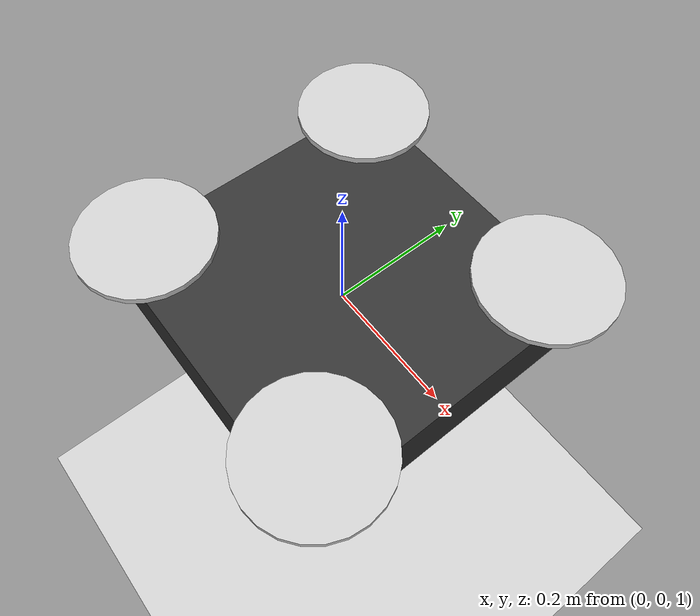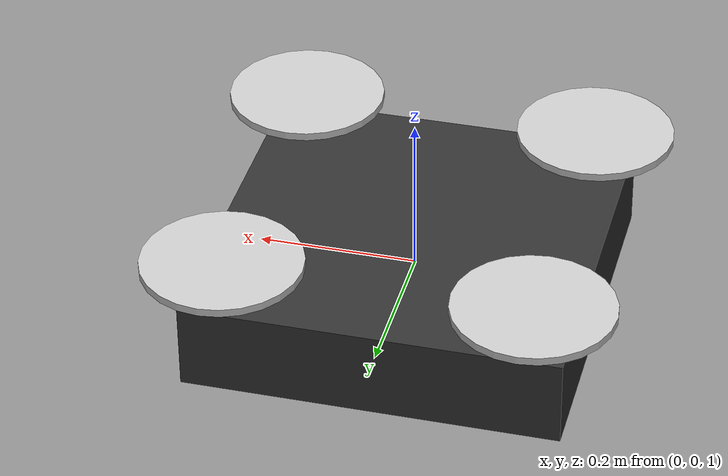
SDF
<?xml version="1.0" ?>
<sdf version="1.6">
  <world name="drone_world">

    <physics name="default_physics" default="0" type="ode">
      <max_step_size>0.004</max_step_size>
      <real_time_factor>1.0</real_time_factor>
      <real_time_update_rate>250</real_time_update_rate>
    </physics>

    <plugin filename="ignition-gazebo-physics-system" name="ignition::gazebo::systems::Physics"></plugin>
    <plugin filename="ignition-gazebo-user-commands-system" name="ignition::gazebo::systems::UserCommands"></plugin>
    <plugin filename="ignition-gazebo-scene-broadcaster-system" name="ignition::gazebo::systems::SceneBroadcaster"></plugin>

    <!-- Sun -->
    <include>
      <uri>https://fuel.ignitionrobotics.org/1.0/OpenRobotics/models/Sun</uri>
    </include>

    <!-- Ground plane -->
    <include>
      <uri>https://fuel.ignitionrobotics.org/1.0/OpenRobotics/models/Ground Plane</uri>
    </include>

    <!-- Drone model with force-based control -->
    <model name="quadrotor">
      <pose>0 0 1.0 0 0 0</pose>
      <link name="base_link">
        <inertial>
          <mass>1.5</mass>
          <inertia>
            <ixx>0.029125</ixx>
            <ixy>0</ixy>
            <ixz>0</ixz>
            <iyy>0.029125</iyy>
            <iyz>0</iyz>
            <izz>0.055225</izz>
          </inertia>
        </inertial>

        <visual name="body">
          <geometry>
            <box>
              <size>0.47 0.47 0.11</size>
            </box>
          </geometry>
          <material>
            <ambient>0.2 0.2 0.2 1</ambient>
            <diffuse>0.2 0.2 0.2 1</diffuse>
          </material>
        </visual>

        <collision name="body_collision">
          <geometry>
            <box>
              <size>0.47 0.47 0.11</size>
            </box>
          </geometry>
        </collision>

        <!-- Rotor visuals -->
        <visual name="rotor_0">
          <pose>0.19 0.19 0.1 0 0 0</pose>
          <geometry>
            <cylinder>
              <radius>0.1</radius>
              <length>0.01</length>
            </cylinder>
          </geometry>
          <material>
            <ambient>0.8 0.8 0.8 1</ambient>
            <diffuse>0.8 0.8 0.8 1</diffuse>
          </material>
        </visual>

        <visual name="rotor_1">
          <pose>-0.19 0.19 0.1 0 0 0</pose>
          <geometry>
            <cylinder>
              <radius>0.1</radius>
              <length>0.01</length>
            </cylinder>
          </geometry>
          <material>
            <ambient>0.8 0.8 0.8 1</ambient>
            <diffuse>0.8 0.8 0.8 1</diffuse>
          </material>
        </visual>

        <visual name="rotor_2">
          <pose>-0.19 -0.19 0.1 0 0 0</pose>
          <geometry>
            <cylinder>
              <radius>0.1</radius>
              <length>0.01</length>
            </cylinder>
          </geometry>
          <material>
            <ambient>0.8 0.8 0.8 1</ambient>
            <diffuse>0.8 0.8 0.8 1</diffuse>
          </material>
        </visual>

        <visual name="rotor_3">
          <pose>0.19 -0.19 0.1 0 0 0</pose>
          <geometry>
            <cylinder>
              <radius>0.1</radius>
              <length>0.01</length>
            </cylinder>
          </geometry>
          <material>
            <ambient>0.8 0.8 0.8 1</ambient>
            <diffuse>0.8 0.8 0.8 1</diffuse>
          </material>
        </visual>
      </link>

      <!-- IMU sensor -->
      <link name="imu_link">
        <pose>0 0 0 0 0 0</pose>
        <sensor name="imu_sensor" type="imu">
          <always_on>1</always_on>
          <update_rate>100</update_rate>
          <visualize>true</visualize>
          <topic>imu</topic>
        </sensor>
      </link>

      <joint name="imu_joint" type="fixed">
        <child>imu_link</child>
        <parent>base_link</parent>
      </joint>

      <!-- Triggered publisher to convert cmd_vel to forces -->
      <plugin filename="ignition-gazebo-triggered-publisher-system"
              name="ignition::gazebo::systems::TriggeredPublisher">
        <input type="ignition.msgs.Twist" topic="/cmd_vel">
          <match field="linear.x">.*</match>
        </input>
        <output type="ignition.msgs.Wrench" topic="/force_cmd">
          <ignition_key>force.x</ignition_key>
          <ignition_value>{linear.x} * 5</ignition_value>
          <ignition_key>force.y</ignition_key>
          <ignition_value>{linear.y} * 5</ignition_value>
          <ignition_key>force.z</ignition_key>
          <ignition_value>{linear.z} * 8 + 14.7</ignition_value>
          <ignition_key>torque.x</ignition_key>
          <ignition_value>{angular.x} * 2</ignition_value>
          <ignition_key>torque.y</ignition_key>
          <ignition_value>{angular.y} * 2</ignition_value>
          <ignition_key>torque.z</ignition_key>
          <ignition_value>{angular.z} * 2</ignition_value>
        </output>
      </plugin>

      <!-- Apply forces -->
      <plugin filename="ignition-gazebo-apply-link-wrench-system"
              name="ignition::gazebo::systems::ApplyLinkWrench">
        <link_name>base_link</link_name>
        <force_topic>/force_cmd</force_topic>
      </plugin>

      <!-- Odometry plugin -->
      <plugin filename="ignition-gazebo-odometry-publisher-system"
              name="ignition::gazebo::systems::OdometryPublisher">
        <odom_frame>odom</odom_frame>
        <robot_base_frame>base_link</robot_base_frame>
        <odom_publish_frequency>50</odom_publish_frequency>
        <odom_topic>odom</odom_topic>
      </plugin>

    </model>

  </world>
</sdf>
